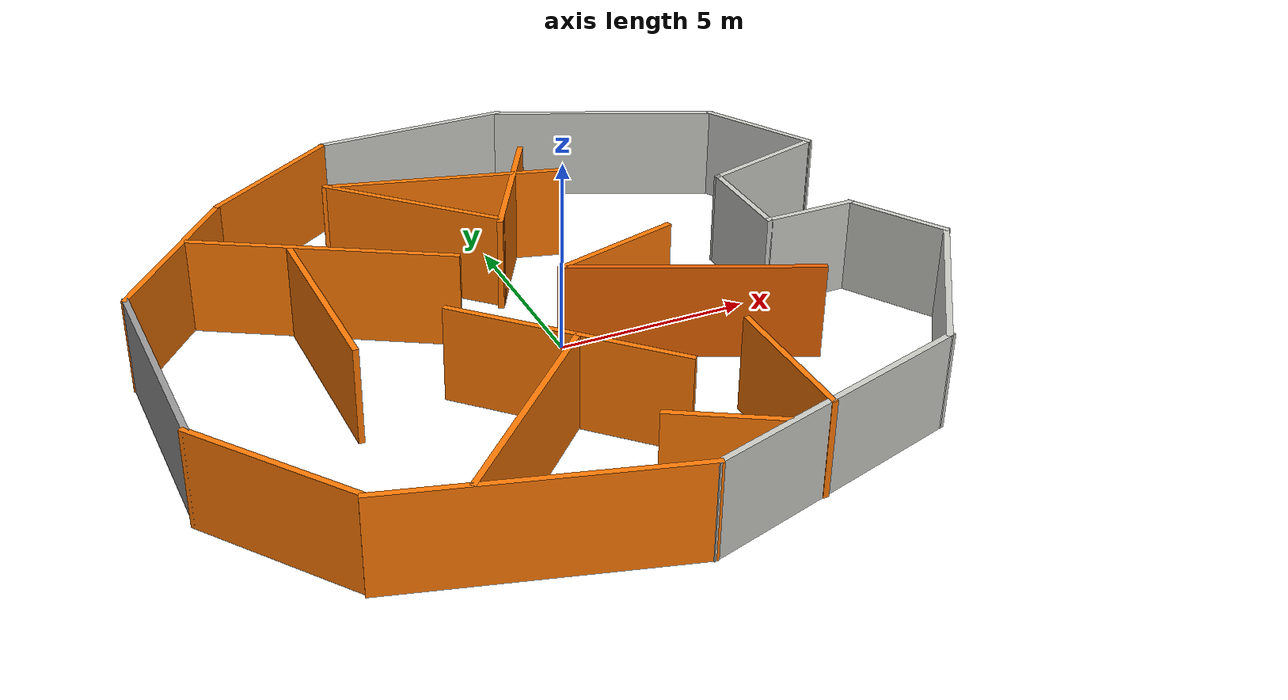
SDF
<?xml version='1.0'?>
<sdf version='1.7'>
  <model name='new_walls'>
    <pose>-0.375483 -0.203321 0 0 -0 0</pose>
    <link name='Wall_10'>
      <collision name='Wall_10_Collision'>
        <geometry>
          <box>
            <size>7.25 0.15 2.5</size>
          </box>
        </geometry>
        <pose>0 0 1.25 0 -0 0</pose>
      </collision>
      <visual name='Wall_10_Visual'>
        <pose>0 0 1.25 0 -0 0</pose>
        <geometry>
          <box>
            <size>7.25 0.15 2.5</size>
          </box>
        </geometry>
        <material>
          <script>
            <uri>file://media/materials/scripts/gazebo.material</uri>
            <name>Gazebo/Grey</name>
          </script>
          <ambient>0.996078 0.47451 0.0196078 1</ambient>
        </material>
        <meta>
          <layer>0</layer>
        </meta>
      </visual>
      <pose>-3.54381 -7.55087 0 0 -0 -0.261799</pose>
    </link>
    <link name='Wall_11'>
      <collision name='Wall_11_Collision'>
        <geometry>
          <box>
            <size>7.4055 0.15 2.5</size>
          </box>
        </geometry>
        <pose>0 0 1.25 0 -0 0</pose>
      </collision>
      <visual name='Wall_11_Visual'>
        <pose>0 0 1.25 0 -0 0</pose>
        <geometry>
          <box>
            <size>7.4055 0.15 2.5</size>
          </box>
        </geometry>
        <material>
          <script>
            <uri>file://media/materials/scripts/gazebo.material</uri>
            <name>Gazebo/CeilingTiled</name>
          </script>
          <ambient>0.996078 0.47451 0.0196078 1</ambient>
        </material>
        <meta>
          <layer>0</layer>
        </meta>
      </visual>
      <pose>3.36195 -7.43381 0 0 -0 0.289571</pose>
    </link>
    <link name='Wall_12'>
      <collision name='Wall_12_Collision'>
        <geometry>
          <box>
            <size>5.09245 0.15 2.5</size>
          </box>
        </geometry>
        <pose>0 0 1.25 0 -0 0</pose>
      </collision>
      <visual name='Wall_12_Visual'>
        <pose>0 0 1.25 0 -0 0</pose>
        <geometry>
          <box>
            <size>5.09245 0.15 2.5</size>
          </box>
        </geometry>
        <material>
          <script>
            <uri>file://media/materials/scripts/gazebo.material</uri>
            <name>Gazebo/CeilingTiled</name>
          </script>
          <ambient>0.901961 0.380392 0 1</ambient>
        </material>
        <meta>
          <layer>0</layer>
        </meta>
      </visual>
      <pose>8.19411 -4.35539 0 0 -0 0.972917</pose>
    </link>
    <link name='Wall_14'>
      <collision name='Wall_14_Collision'>
        <geometry>
          <box>
            <size>5.75 0.15 2.5</size>
          </box>
        </geometry>
        <pose>0 0 1.25 0 -0 0</pose>
      </collision>
      <visual name='Wall_14_Visual'>
        <pose>0 0 1.25 0 -0 0</pose>
        <geometry>
          <box>
            <size>5.75 0.15 2.5</size>
          </box>
        </geometry>
        <material>
          <script>
            <uri>file://media/materials/scripts/gazebo.material</uri>
            <name>Gazebo/Grey</name>
          </script>
          <ambient>1 1 1 1</ambient>
        </material>
        <meta>
          <layer>0</layer>
        </meta>
      </visual>
      <pose>-9.54882 -0.253175 0 0 -0 1.5708</pose>
    </link>
    <link name='Wall_15'>
      <collision name='Wall_15_Collision'>
        <geometry>
          <box>
            <size>4.9356 0.15 2.5</size>
          </box>
        </geometry>
        <pose>0 0 1.25 0 -0 0</pose>
      </collision>
      <visual name='Wall_15_Visual'>
        <pose>0 0 1.25 0 -0 0</pose>
        <geometry>
          <box>
            <size>4.9356 0.15 2.5</size>
          </box>
        </geometry>
        <material>
          <script>
            <uri>file://media/materials/scripts/gazebo.material</uri>
            <name>Gazebo/Grey</name>
          </script>
          <ambient>0.996078 0.47451 0.0196078 1</ambient>
        </material>
        <meta>
          <layer>0</layer>
        </meta>
      </visual>
      <pose>-7.99452 4.36606 0 0 -0 0.863771</pose>
    </link>
    <link name='Wall_16'>
      <collision name='Wall_16_Collision'>
        <geometry>
          <box>
            <size>4.26942 0.15 2.5</size>
          </box>
        </geometry>
        <pose>0 0 1.25 0 -0 0</pose>
      </collision>
      <visual name='Wall_16_Visual'>
        <pose>0 0 1.25 0 -0 0</pose>
        <geometry>
          <box>
            <size>4.26942 0.15 2.5</size>
          </box>
        </geometry>
        <material>
          <script>
            <uri>file://media/materials/scripts/gazebo.material</uri>
            <name>Gazebo/Grey</name>
          </script>
          <ambient>0.996078 0.47451 0.0196078 1</ambient>
        </material>
        <meta>
          <layer>0</layer>
        </meta>
      </visual>
      <pose>-4.72049 7.31885 0 0 -0 0.582775</pose>
    </link>
    <link name='Wall_17'>
      <collision name='Wall_17_Collision'>
        <geometry>
          <box>
            <size>5.25 0.15 2.5</size>
          </box>
        </geometry>
        <pose>0 0 1.25 0 -0 0</pose>
      </collision>
      <visual name='Wall_17_Visual'>
        <pose>0 0 1.25 0 -0 0</pose>
        <geometry>
          <box>
            <size>5.25 0.15 2.5</size>
          </box>
        </geometry>
        <material>
          <script>
            <uri>file://media/materials/scripts/gazebo.material</uri>
            <name>Gazebo/CeilingTiled</name>
          </script>
          <ambient>0.996078 0.47451 0.0196078 1</ambient>
        </material>
        <meta>
          <layer>0</layer>
        </meta>
      </visual>
      <pose>-0.415179 8.48797 0 0 -0 0</pose>
    </link>
    <link name='Wall_18'>
      <collision name='Wall_18_Collision'>
        <geometry>
          <box>
            <size>6.10094 0.15 2.5</size>
          </box>
        </geometry>
        <pose>0 0 1.25 0 -0 0</pose>
      </collision>
      <visual name='Wall_18_Visual'>
        <pose>0 0 1.25 0 -0 0</pose>
        <geometry>
          <box>
            <size>6.10094 0.15 2.5</size>
          </box>
        </geometry>
        <material>
          <script>
            <uri>file://media/materials/scripts/gazebo.material</uri>
            <name>Gazebo/CeilingTiled</name>
          </script>
          <ambient>0.996078 0.47451 0.0196078 1</ambient>
        </material>
        <meta>
          <layer>0</layer>
        </meta>
      </visual>
      <pose>4.82277 7.25414 0 0 -0 -0.414475</pose>
    </link>
    <link name='Wall_19'>
      <collision name='Wall_19_Collision'>
        <geometry>
          <box>
            <size>3.25 0.15 2.5</size>
          </box>
        </geometry>
        <pose>0 0 1.25 0 -0 0</pose>
      </collision>
      <visual name='Wall_19_Visual'>
        <pose>0 0 1.25 0 -0 0</pose>
        <geometry>
          <box>
            <size>3.25 0.15 2.5</size>
          </box>
        </geometry>
        <material>
          <script>
            <uri>file://media/materials/scripts/gazebo.material</uri>
            <name>Gazebo/CeilingTiled</name>
          </script>
          <ambient>0.996078 0.47451 0.0196078 1</ambient>
        </material>
        <meta>
          <layer>0</layer>
        </meta>
      </visual>
      <pose>8.3213 4.71355 0 0 -0 -1.0472</pose>
    </link>
    <link name='Wall_20'>
      <collision name='Wall_20_Collision'>
        <geometry>
          <box>
            <size>3.5 0.15 2.5</size>
          </box>
        </geometry>
        <pose>0 0 1.25 0 -0 0</pose>
      </collision>
      <visual name='Wall_20_Visual'>
        <pose>0 0 1.25 0 -0 0</pose>
        <geometry>
          <box>
            <size>3.5 0.15 2.5</size>
          </box>
        </geometry>
        <material>
          <script>
            <uri>file://media/materials/scripts/gazebo.material</uri>
            <name>Gazebo/CeilingTiled</name>
          </script>
          <ambient>0.996078 0.47451 0.0196078 1</ambient>
        </material>
        <meta>
          <layer>0</layer>
        </meta>
      </visual>
      <pose>7.47837 2.93769 0 0 -0 -2.87979</pose>
    </link>
    <link name='Wall_21'>
      <collision name='Wall_21_Collision'>
        <geometry>
          <box>
            <size>2.75 0.15 2.5</size>
          </box>
        </geometry>
        <pose>0 0 1.25 0 -0 0</pose>
      </collision>
      <visual name='Wall_21_Visual'>
        <pose>0 0 1.25 0 -0 0</pose>
        <geometry>
          <box>
            <size>2.75 0.15 2.5</size>
          </box>
        </geometry>
        <material>
          <script>
            <uri>file://media/materials/scripts/gazebo.material</uri>
            <name>Gazebo/CeilingTiled</name>
          </script>
          <ambient>0.901961 0.380392 0 1</ambient>
        </material>
        <meta>
          <layer>0</layer>
        </meta>
      </visual>
      <pose>5.86045 1.20417 0 0 -0 -1.5708</pose>
    </link>
    <link name='Wall_22'>
      <collision name='Wall_22_Collision'>
        <geometry>
          <box>
            <size>2.5 0.15 2.5</size>
          </box>
        </geometry>
        <pose>0 0 1.25 0 -0 0</pose>
      </collision>
      <visual name='Wall_22_Visual'>
        <pose>0 0 1.25 0 -0 0</pose>
        <geometry>
          <box>
            <size>2.5 0.15 2.5</size>
          </box>
        </geometry>
        <material>
          <script>
            <uri>file://media/materials/scripts/gazebo.material</uri>
            <name>Gazebo/CeilingTiled</name>
          </script>
          <ambient>0.996078 0.47451 0.0196078 1</ambient>
        </material>
        <meta>
          <layer>0</layer>
        </meta>
      </visual>
      <pose>7.03545 -0.09583 0 0 -0 0</pose>
    </link>
    <link name='Wall_23'>
      <collision name='Wall_23_Collision'>
        <geometry>
          <box>
            <size>2.75863 0.15 2.5</size>
          </box>
        </geometry>
        <pose>0 0 1.25 0 -0 0</pose>
      </collision>
      <visual name='Wall_23_Visual'>
        <pose>0 0 1.25 0 -0 0</pose>
        <geometry>
          <box>
            <size>2.75863 0.15 2.5</size>
          </box>
        </geometry>
        <material>
          <script>
            <uri>file://media/materials/scripts/gazebo.material</uri>
            <name>Gazebo/CeilingTiled</name>
          </script>
          <ambient>0.901961 0.380392 0 1</ambient>
        </material>
        <meta>
          <layer>0</layer>
        </meta>
      </visual>
      <pose>8.89779 -1.20434 0 0 -0 -1.01575</pose>
    </link>
    <link name='Wall_25'>
      <collision name='Wall_25_Collision'>
        <geometry>
          <box>
            <size>6.75 0.15 2.5</size>
          </box>
        </geometry>
        <pose>0 0 1.25 0 -0 0</pose>
      </collision>
      <visual name='Wall_25_Visual'>
        <pose>0 0 1.25 0 -0 0</pose>
        <geometry>
          <box>
            <size>6.75 0.15 2.5</size>
          </box>
        </geometry>
        <material>
          <script>
            <uri>file://media/materials/scripts/gazebo.material</uri>
            <name>Gazebo/Grey</name>
          </script>
          <ambient>0.996078 0.47451 0.0196078 1</ambient>
        </material>
        <meta>
          <layer>0</layer>
        </meta>
      </visual>
      <pose>-4.7149 3.048 0 0 -0 2.61799</pose>
    </link>
    <link name='Wall_27'>
      <collision name='Wall_27_Collision'>
        <geometry>
          <box>
            <size>5 0.15 2.5</size>
          </box>
        </geometry>
        <pose>0 0 1.25 0 -0 0</pose>
      </collision>
      <visual name='Wall_27_Visual'>
        <pose>0 0 1.25 0 -0 0</pose>
        <geometry>
          <box>
            <size>5 0.15 2.5</size>
          </box>
        </geometry>
        <material>
          <script>
            <uri>file://media/materials/scripts/gazebo.material</uri>
            <name>Gazebo/Grey</name>
          </script>
          <ambient>0.996078 0.47451 0.0196078 1</ambient>
        </material>
        <meta>
          <layer>0</layer>
        </meta>
      </visual>
      <pose>-5.41799 0.876971 0 0 -0 -1.5708</pose>
    </link>
    <link name='Wall_29'>
      <collision name='Wall_29_Collision'>
        <geometry>
          <box>
            <size>6 0.15 2.5</size>
          </box>
        </geometry>
        <pose>0 0 1.25 0 -0 0</pose>
      </collision>
      <visual name='Wall_29_Visual'>
        <pose>0 0 1.25 0 -0 0</pose>
        <geometry>
          <box>
            <size>6 0.15 2.5</size>
          </box>
        </geometry>
        <material>
          <script>
            <uri>file://media/materials/scripts/gazebo.material</uri>
            <name>Gazebo/Grey</name>
          </script>
          <ambient>0.996078 0.47451 0.0196078 1</ambient>
        </material>
        <meta>
          <layer>0</layer>
        </meta>
      </visual>
      <pose>-0.89472 -2.82237 0 0 -0 -0.785398</pose>
    </link>
    <link name='Wall_31'>
      <collision name='Wall_31_Collision'>
        <geometry>
          <box>
            <size>6 0.15 2.5</size>
          </box>
        </geometry>
        <pose>0 0 1.25 0 -0 0</pose>
      </collision>
      <visual name='Wall_31_Visual'>
        <pose>0 0 1.25 0 -0 0</pose>
        <geometry>
          <box>
            <size>6 0.15 2.5</size>
          </box>
        </geometry>
        <material>
          <script>
            <uri>file://media/materials/scripts/gazebo.material</uri>
            <name>Gazebo/Grey</name>
          </script>
          <ambient>0.996078 0.47451 0.0196078 1</ambient>
        </material>
        <meta>
          <layer>0</layer>
        </meta>
      </visual>
      <pose>-2.78979 -5.09945 0 0 -0 -2.35619</pose>
    </link>
    <link name='Wall_33'>
      <collision name='Wall_33_Collision'>
        <geometry>
          <box>
            <size>2.75 0.15 2.5</size>
          </box>
        </geometry>
        <pose>0 0 1.25 0 -0 0</pose>
      </collision>
      <visual name='Wall_33_Visual'>
        <pose>0 0 1.25 0 -0 0</pose>
        <geometry>
          <box>
            <size>2.75 0.15 2.5</size>
          </box>
        </geometry>
        <material>
          <script>
            <uri>file://media/materials/scripts/gazebo.material</uri>
            <name>Gazebo/Grey</name>
          </script>
          <ambient>0.996078 0.47451 0.0196078 1</ambient>
        </material>
        <meta>
          <layer>0</layer>
        </meta>
      </visual>
      <pose>0.760931 -7.13895 0 0 -0 2.61799</pose>
    </link>
    <link name='Wall_35'>
      <collision name='Wall_35_Collision'>
        <geometry>
          <box>
            <size>3.5 0.15 2.5</size>
          </box>
        </geometry>
        <pose>0 0 1.25 0 -0 0</pose>
      </collision>
      <visual name='Wall_35_Visual'>
        <pose>0 0 1.25 0 -0 0</pose>
        <geometry>
          <box>
            <size>3.5 0.15 2.5</size>
          </box>
        </geometry>
        <material>
          <script>
            <uri>file://media/materials/scripts/gazebo.material</uri>
            <name>Gazebo/Grey</name>
          </script>
          <ambient>0.996078 0.47451 0.0196078 1</ambient>
        </material>
        <meta>
          <layer>0</layer>
        </meta>
      </visual>
      <pose>1.81808 0.278606 0 0 -0 -2.87979</pose>
    </link>
    <link name='Wall_36'>
      <collision name='Wall_36_Collision'>
        <geometry>
          <box>
            <size>6.34587 0.15 2.5</size>
          </box>
        </geometry>
        <pose>0 0 1.25 0 -0 0</pose>
      </collision>
      <visual name='Wall_36_Visual'>
        <pose>0 0 1.25 0 -0 0</pose>
        <geometry>
          <box>
            <size>6.34587 0.15 2.5</size>
          </box>
        </geometry>
        <material>
          <script>
            <uri>file://media/materials/scripts/gazebo.material</uri>
            <name>Gazebo/Grey</name>
          </script>
          <ambient>0.901961 0.380392 0 1</ambient>
        </material>
        <meta>
          <layer>0</layer>
        </meta>
      </visual>
      <pose>3.0557 -1.40345 0 0 -0 -0.414814</pose>
    </link>
    <link name='Wall_38'>
      <collision name='Wall_38_Collision'>
        <geometry>
          <box>
            <size>3.75 0.15 2.5</size>
          </box>
        </geometry>
        <pose>0 0 1.25 0 -0 0</pose>
      </collision>
      <visual name='Wall_38_Visual'>
        <pose>0 0 1.25 0 -0 0</pose>
        <geometry>
          <box>
            <size>3.75 0.15 2.5</size>
          </box>
        </geometry>
        <material>
          <script>
            <uri>file://media/materials/scripts/gazebo.material</uri>
            <name>Gazebo/Grey</name>
          </script>
          <ambient>0.996078 0.47451 0.0196078 1</ambient>
        </material>
        <meta>
          <layer>0</layer>
        </meta>
      </visual>
      <pose>3.06829 -5.76061 0 0 -0 -1.5708</pose>
    </link>
    <link name='Wall_41'>
      <collision name='Wall_41_Collision'>
        <geometry>
          <box>
            <size>5 0.15 2.5</size>
          </box>
        </geometry>
        <pose>0 0 1.25 0 -0 0</pose>
      </collision>
      <visual name='Wall_41_Visual'>
        <pose>0 0 1.25 0 -0 0</pose>
        <geometry>
          <box>
            <size>5 0.15 2.5</size>
          </box>
        </geometry>
        <material>
          <script>
            <uri>file://media/materials/scripts/gazebo.material</uri>
            <name>Gazebo/Grey</name>
          </script>
          <ambient>0.996078 0.47451 0.0196078 1</ambient>
        </material>
        <meta>
          <layer>0</layer>
        </meta>
      </visual>
      <pose>-1.90104 4.40227 0 0 -0 2.35619</pose>
    </link>
    <link name='Wall_42'>
      <collision name='Wall_42_Collision'>
        <geometry>
          <box>
            <size>6.25 0.15 2.5</size>
          </box>
        </geometry>
        <pose>0 0 1.25 0 -0 0</pose>
      </collision>
      <visual name='Wall_42_Visual'>
        <pose>0 0 1.25 0 -0 0</pose>
        <geometry>
          <box>
            <size>6.25 0.15 2.5</size>
          </box>
        </geometry>
        <material>
          <script>
            <uri>file://media/materials/scripts/gazebo.material</uri>
            <name>Gazebo/Grey</name>
          </script>
          <ambient>0.996078 0.47451 0.0196078 1</ambient>
        </material>
        <meta>
          <layer>0</layer>
        </meta>
      </visual>
      <pose>-0.705477 5.3276 0 0 -0 -0.261799</pose>
    </link>
    <link name='Wall_44'>
      <collision name='Wall_44_Collision'>
        <geometry>
          <box>
            <size>4.25 0.15 2.5</size>
          </box>
        </geometry>
        <pose>0 0 1.25 0 -0 0</pose>
      </collision>
      <visual name='Wall_44_Visual'>
        <pose>0 0 1.25 0 -0 0</pose>
        <geometry>
          <box>
            <size>4.25 0.15 2.5</size>
          </box>
        </geometry>
        <material>
          <script>
            <uri>file://media/materials/scripts/gazebo.material</uri>
            <name>Gazebo/Grey</name>
          </script>
          <ambient>0.996078 0.47451 0.0196078 1</ambient>
        </material>
        <meta>
          <layer>0</layer>
        </meta>
      </visual>
      <pose>0.786273 4.36079 0 0 -0 1.0472</pose>
    </link>
    <link name='Wall_9'>
      <collision name='Wall_9_Collision'>
        <geometry>
          <box>
            <size>4.52315 0.15 2.5</size>
          </box>
        </geometry>
        <pose>0 0 1.25 0 -0 0</pose>
      </collision>
      <visual name='Wall_9_Visual'>
        <pose>0 0 1.25 0 -0 0</pose>
        <geometry>
          <box>
            <size>4.52315 0.15 2.5</size>
          </box>
        </geometry>
        <material>
          <script>
            <uri>file://media/materials/scripts/gazebo.material</uri>
            <name>Gazebo/Grey</name>
          </script>
          <ambient>0.996078 0.47451 0.0196078 1</ambient>
        </material>
        <meta>
          <layer>0</layer>
        </meta>
      </visual>
      <pose>-8.27862 -4.80704 0 0 -0 -0.930815</pose>
    </link>
    <static>1</static>
  </model>
</sdf>
